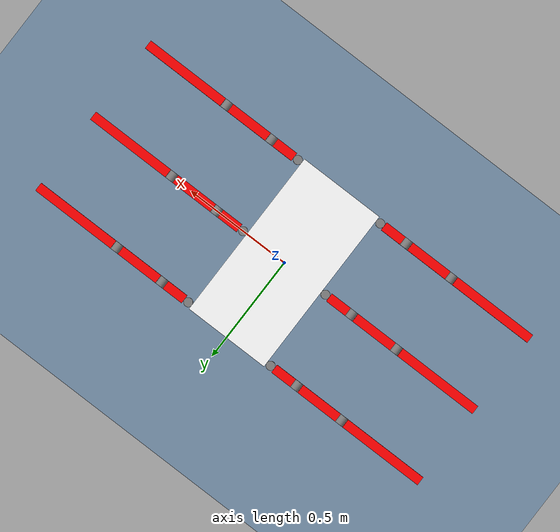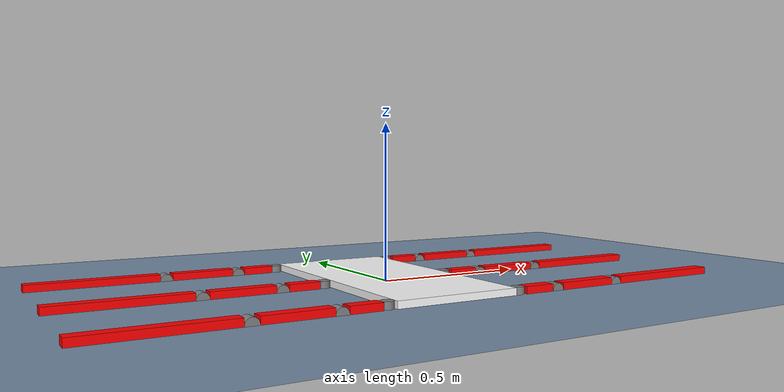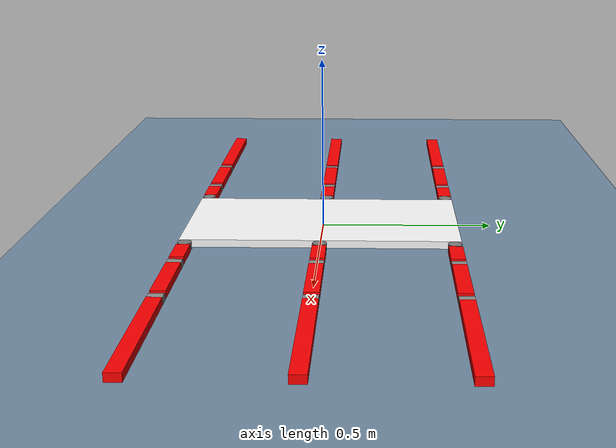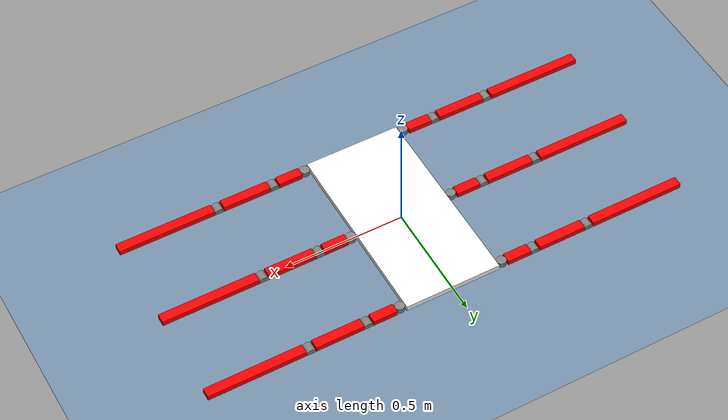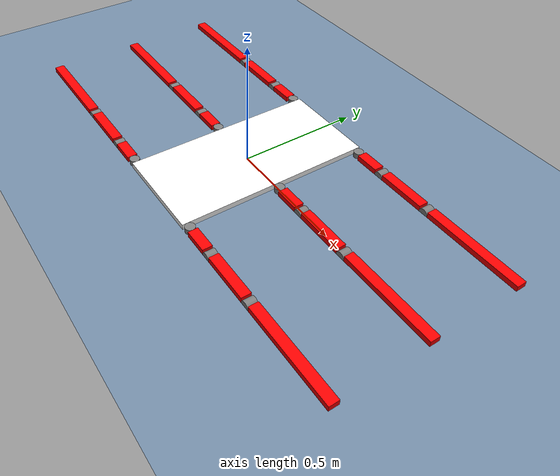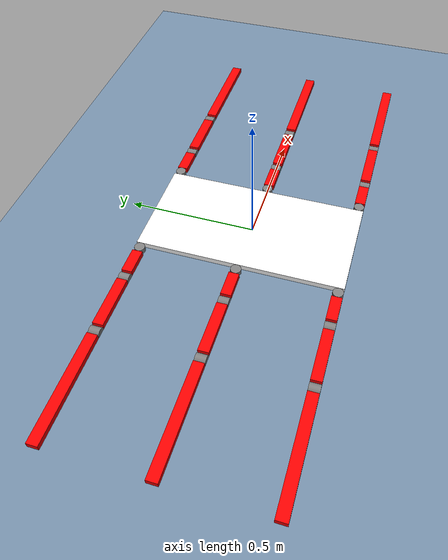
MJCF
<!-- XML file describing the structure of the hexapod robot, required for "mujoco_hexapod.py" -->

<mujoco model="hexapod">
    <asset>
        <texture name="grid" type="2d" builtin="checker" rgb1=".5 .6 .7" rgb2=".4 .5 .6" width="1000" height="1000"/>
        <material name="grid" texture="grid" texrepeat="1 1" texuniform="true" reflectance="0"/>
        <!-- If texuniform is true, texrepeat determines how many textures in 1 (m) -->

        <texture name="skybox" type="skybox" builtin="gradient" rgb1=".4 .6 .8" rgb2="0 0 0" width="100" height="100"/>
        <mesh name="pyramid" vertex="-0.2 0.0 -0.02  -0.2 0.0 0.02  0.2 0.0 -0.02  0.2 0.0 0.02  0 0.2 0"/>
    </asset>

    <worldbody>
        <!-- xyz coordinate (right hand) -->
        <geom name="floor" type="plane" size="5 10 .1" material="grid" pos="0 0 0" solref="0.0002 1"/>

        <body name="hexapod" pos="0 0 0">
            <!-- Light and camera -->
            <light cutoff="100" diffuse="1 1 1" dir="0 0 -1" directional="true" exponent="1" pos="0 0 3" specular="0.1 0.1 0.1"/>
            <light cutoff="100" diffuse="1 1 1" dir="-1 2 0" directional="true" exponent="1" pos="1 -2 3" specular="0.1 0.1 0.1"/>
            <camera name="track" mode="track" target="hexapod" pos="1 -1 1" xyaxes="1 1 0 -1 1 1.7"/>

            <!-- Thorax -->
            <geom name="thorax" pos="0 0 0" size="0.2 0.4 0.02" type="box" rgba="1 1 1 1" mass="10"/>
            <joint armature="0" damping="0" limited="false" margin="0.01" name="root" pos="0 0 0" type="free"/>

            <!-- RF -->
            <body name="RF" pos="0.29 0.38 0.0" euler="0 0 0">
                <geom name="RF_coxa" pos="0.0 0.0 0.0" size="0.05 0.02 0.02" type="box" rgba="1 0.0 0.0 1" mass="0.2"/>
                <geom name="RF_bolt1" fromto="-0.07 0 -0.02 -0.07 0 0.02" size="0.02 0.02" type="cylinder" mass="0"/>
                <joint name="RF_joint1" axis="0 0 1" pos="-0.07 0 0.0" range="-180 180" type="hinge"/>
                <body pos="0.19 0.0 0.0" euler="0 0 0">
                    <geom name="RF_femur" pos="0.0 0.0 0.0" size="0.1 0.02 0.02" type="box" rgba="1 0.0 0.0 1" mass="0.4"/>
                    <geom name="RF_bolt2" fromto="-0.12 -0.02 0.0 -0.12 0.02 0.0" size="0.02 0.02" type="cylinder" mass="0"/>
                    <joint name="RF_joint2" axis="0 -1 0" pos="-0.12 0.0 0.0" range="-180 180" type="hinge"/>
                    <body pos="0.34 0.0 0.0" euler="0 0 0">
                        <geom name="RF_tibia" pos="0.0 0.0 0.0" size="0.2 0.02 0.02" type="box" rgba="1 0.0 0.0 1" mass="0.8"/>
                        <geom name="RF_bolt3" fromto="-0.22 -0.02 0.0 -0.22 0.02 0.0" size="0.02 0.02" type="cylinder" mass="0"/>
                        <joint name="RF_joint3" axis="0 -1 0" pos="-0.22 0.0 0.0" range="-180 180" type="hinge"/>
                    </body>
                </body>
            </body>

            <!-- RM -->
            <body name="RM" pos="0.29 0 0.0" euler="0 0 0">
                <geom name="RM_coxa" pos="0.0 0.0 0.0" size="0.05 0.02 0.02" type="box" rgba="1 0.0 0.0 1" mass="0.2"/>
                <geom name="RM_bolt1" fromto="-0.07 0 -0.02 -0.07 0 0.02" size="0.02 0.02" type="cylinder" mass="0"/>
                <joint name="RM_joint1" axis="0 0 1" pos="-0.07 0 0.0" range="-180 180" type="hinge"/>
                <body pos="0.19 0.0 0.0" euler="0 0 0">
                    <geom name="RM_femur" pos="0.0 0.0 0.0" size="0.1 0.02 0.02" type="box" rgba="1 0.0 0.0 1" mass="0.4"/>
                    <geom name="RM_bolt2" fromto="-0.12 -0.02 0.0 -0.12 0.02 0.0" size="0.02 0.02" type="cylinder" mass="0"/>
                    <joint name="RM_joint2" axis="0 -1 0" pos="-0.12 0.0 0.0" range="-180 180" type="hinge"/>
                    <body pos="0.34 0.0 0.0" euler="0 0 0">
                        <geom name="RM_tibia" pos="0.0 0.0 0.0" size="0.2 0.02 0.02" type="box" rgba="1 0.0 0.0 1" mass="0.8"/>
                        <geom name="RM_bolt3" fromto="-0.22 -0.02 0.0 -0.22 0.02 0.0" size="0.02 0.02" type="cylinder" mass="0"/>
                        <joint name="RM_joint3" axis="0 -1 0" pos="-0.22 0.0 0.0" range="-180 180" type="hinge"/>
                    </body>
                </body>
            </body>

            <!-- RH -->
            <body name="RH" pos="0.29 -0.38 0.0" euler="0 0 0">
                <geom name="RH_coxa" pos="0.0 0.0 0.0" size="0.05 0.02 0.02" type="box" rgba="1 0.0 0.0 1" mass="0.2"/>
                <geom name="RH_bolt1" fromto="-0.07 0 -0.02 -0.07 0 0.02" size="0.02 0.02" type="cylinder" mass="0"/>
                <joint name="RH_joint1" axis="0 0 1" pos="-0.07 0 0.0" range="-180 180" type="hinge"/>
                <body pos="0.19 0.0 0.0" euler="0 0 0">
                    <geom name="RH_femur" pos="0.0 0.0 0.0" size="0.1 0.02 0.02" type="box" rgba="1 0.0 0.0 1" mass="0.4"/>
                    <geom name="RH_bolt2" fromto="-0.12 -0.02 0.0 -0.12 0.02 0.0" size="0.02 0.02" type="cylinder" mass="0"/>
                    <joint name="RH_joint2" axis="0 -1 0" pos="-0.12 0.0 0.0" range="-180 180" type="hinge"/>
                    <body pos="0.34 0.0 0.0" euler="0 0 0">
                        <geom name="RH_tibia" pos="0.0 0.0 0.0" size="0.2 0.02 0.02" type="box" rgba="1 0.0 0.0 1" mass="0.8"/>
                        <geom name="RH_bolt3" fromto="-0.22 -0.02 0.0 -0.22 0.02 0.0" size="0.02 0.02" type="cylinder" mass="0"/>
                        <joint name="RH_joint3" axis="0 -1 0" pos="-0.22 0.0 0.0" range="-180 180" type="hinge"/>
                    </body>
                </body>
            </body>

            <!-- LF -->
            <body name="LF" pos="-0.29 0.38 0.0" euler="0 0 0">
                <geom name="LF_coxa" pos="0.0 0.0 0.0" size="0.05 0.02 0.02" type="box" rgba="1 0.0 0.0 1" mass="0.2"/>
                <geom name="LF_bolt1" fromto="0.07 0 -0.02 0.07 0 0.02" size="0.02 0.02" type="cylinder" mass="0"/>
                <joint name="LF_joint1" axis="0 0 1" pos="0.07 0 0.0" range="-180 180" type="hinge"/>
                <body pos="-0.19 0.0 0.0" euler="0 0 0">
                    <geom name="LF_femur" pos="0.0 0.0 0.0" size="0.1 0.02 0.02" type="box" rgba="1 0.0 0.0 1" mass="0.4"/>
                    <geom name="LF_bolt2" fromto="0.12 -0.02 0.0 0.12 0.02 0.0" size="0.02 0.02" type="cylinder" mass="0"/>
                    <joint name="LF_joint2" axis="0 -1 0" pos="0.12 0.0 0.0" range="-180 180" type="hinge"/>
                    <body pos="-0.34 0.0 0.0" euler="0 0 0">
                        <geom name="LF_tibia" pos="0.0 0.0 0.0" size="0.2 0.02 0.02" type="box" rgba="1 0.0 0.0 1" mass="0.8"/>
                        <geom name="LF_bolt3" fromto="0.22 -0.02 0.0 0.22 0.02 0.0" size="0.02 0.02" type="cylinder" mass="0"/>
                        <joint name="LF_joint3" axis="0 -1 0" pos="0.22 0.0 0.0" range="-180 180" type="hinge"/>
                    </body>
                </body>
            </body>

            <!-- LM -->
            <body name="LM" pos="-0.29 0.0 0.0" euler="0 0 0">
                <geom name="LM_coxa" pos="0.0 0.0 0.0" size="0.05 0.02 0.02" type="box" rgba="1 0.0 0.0 1" mass="0.2"/>
                <geom name="LM_bolt1" fromto="0.07 0 -0.02 0.07 0 0.02" size="0.02 0.02" type="cylinder" mass="0"/>
                <joint name="LM_joint1" axis="0 0 1" pos="0.07 0 0.0" range="-180 180" type="hinge"/>
                <body pos="-0.19 0.0 0.0" euler="0 0 0">
                    <geom name="LM_femur" pos="0.0 0.0 0.0" size="0.1 0.02 0.02" type="box" rgba="1 0.0 0.0 1" mass="0.4"/>
                    <geom name="LM_bolt2" fromto="0.12 -0.02 0.0 0.12 0.02 0.0" size="0.02 0.02" type="cylinder" mass="0"/>
                    <joint name="LM_joint2" axis="0 -1 0" pos="0.12 0.0 0.0" range="-180 180" type="hinge"/>
                    <body pos="-0.34 0.0 0.0" euler="0 0 0">
                        <geom name="LM_tibia" pos="0.0 0.0 0.0" size="0.2 0.02 0.02" type="box" rgba="1 0.0 0.0 1" mass="0.8"/>
                        <geom name="LM_bolt3" fromto="0.22 -0.02 0.0 0.22 0.02 0.0" size="0.02 0.02" type="cylinder" mass="0"/>
                        <joint name="LM_joint3" axis="0 -1 0" pos="0.22 0.0 0.0" range="-180 180" type="hinge"/>
                    </body>
                </body>
            </body>

            <!-- LH -->
            <body name="LH" pos="-0.29 -0.38 0.0" euler="0 0 0">
                <geom name="LH_coxa" pos="0.0 0.0 0.0" size="0.05 0.02 0.02" type="box" rgba="1 0.0 0.0 1" mass="0.2"/>
                <geom name="LH_bolt1" fromto="0.07 0 -0.02 0.07 0 0.02" size="0.02 0.02" type="cylinder" mass="0"/>
                <joint name="LH_joint1" axis="0 0 1" pos="0.07 0 0.0" range="-180 180" type="hinge"/>
                <body pos="-0.19 0.0 0.0" euler="0 0 0">
                    <geom name="LH_femur" pos="0.0 0.0 0.0" size="0.1 0.02 0.02" type="box" rgba="1 0.0 0.0 1" mass="0.4"/>
                    <geom name="LH_bolt2" fromto="0.12 -0.02 0.0 0.12 0.02 0.0" size="0.02 0.02" type="cylinder" mass="0"/>
                    <joint name="LH_joint2" axis="0 -1 0" pos="0.12 0.0 0.0" range="-180 180" type="hinge"/>
                    <body pos="-0.34 0.0 0.0" euler="0 0 0">
                        <geom name="LH_tibia" pos="0.0 0.0 0.0" size="0.2 0.02 0.02" type="box" rgba="1 0.0 0.0 1" mass="0.8"/>
                        <geom name="LH_bolt3" fromto="0.22 -0.02 0.0 0.22 0.02 0.0" size="0.02 0.02" type="cylinder" mass="0"/>
                        <joint name="LH_joint3" axis="0 -1 0" pos="0.22 0.0 0.0" range="-180 180" type="hinge"/>
                    </body>
                </body>
            </body>
        </body>
    </worldbody>

    <!-- PD gains -->
    <actuator>
        <position joint="RF_joint1" kp="60" kv="5"/>
        <position joint="RF_joint2" kp="120" kv="10"/>
        <position joint="RF_joint3" kp="40" kv="3"/>
        <position joint="RM_joint1" kp="60" kv="5"/>
        <position joint="RM_joint2" kp="120" kv="10"/>
        <position joint="RM_joint3" kp="40" kv="3"/>
        <position joint="RH_joint1" kp="60" kv="5"/>
        <position joint="RH_joint2" kp="120" kv="10"/>
        <position joint="RH_joint3" kp="40" kv="3"/>
        <position joint="LF_joint1" kp="60" kv="5"/>
        <position joint="LF_joint2" kp="120" kv="10"/>
        <position joint="LF_joint3" kp="40" kv="3"/>
        <position joint="LM_joint1" kp="60" kv="5"/>
        <position joint="LM_joint2" kp="120" kv="10"/>
        <position joint="LM_joint3" kp="40" kv="3"/>
        <position joint="LH_joint1" kp="60" kv="5"/>
        <position joint="LH_joint2" kp="120" kv="10"/>
        <position joint="LH_joint3" kp="40" kv="3"/>
    </actuator>
</mujoco>
